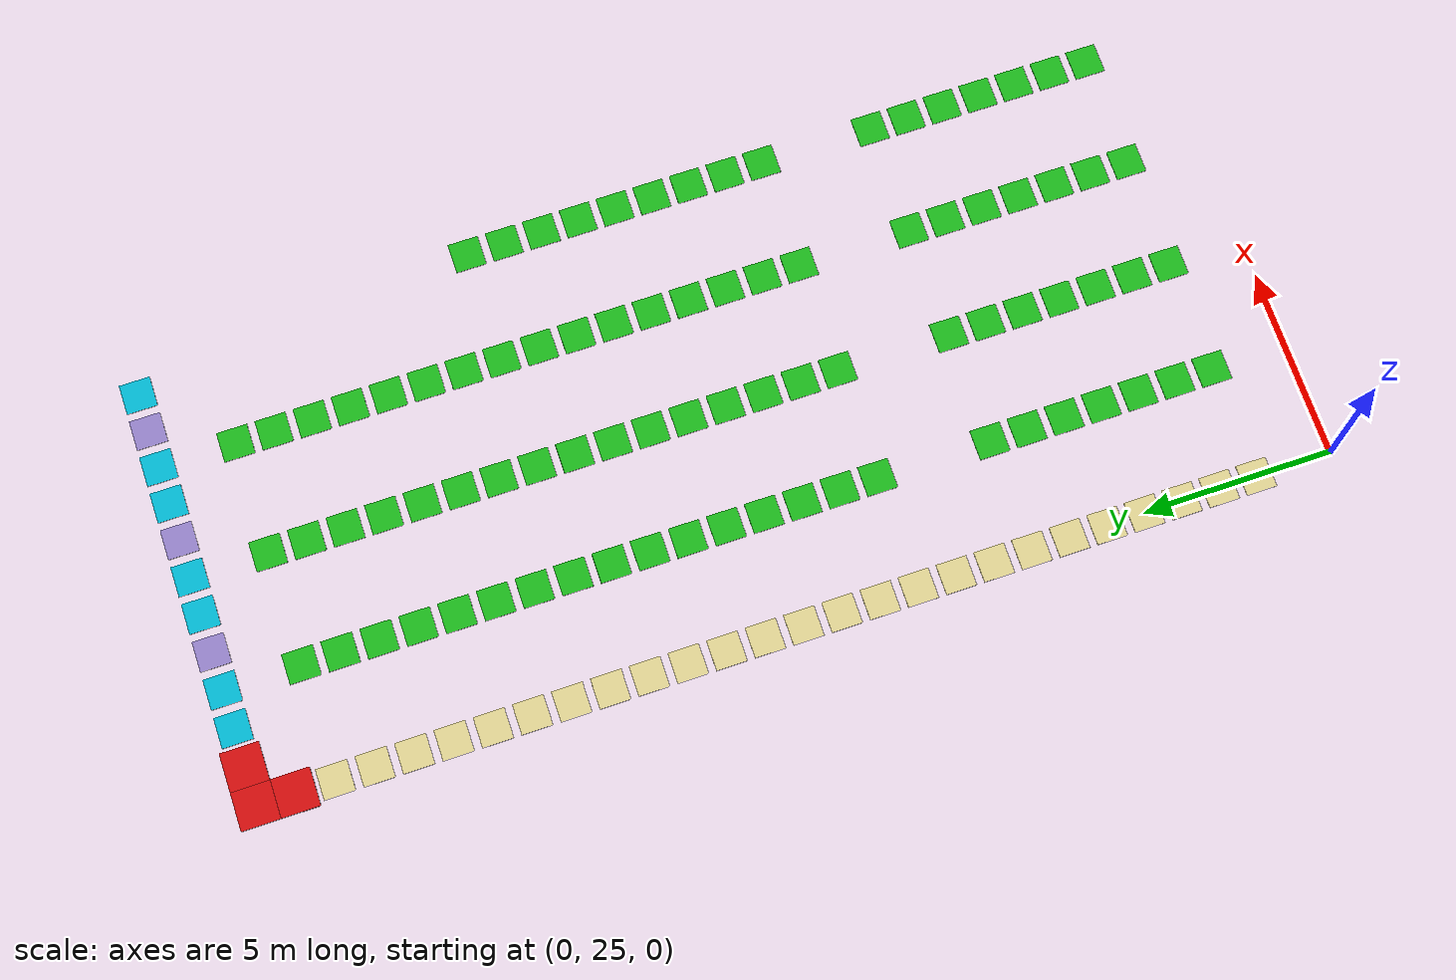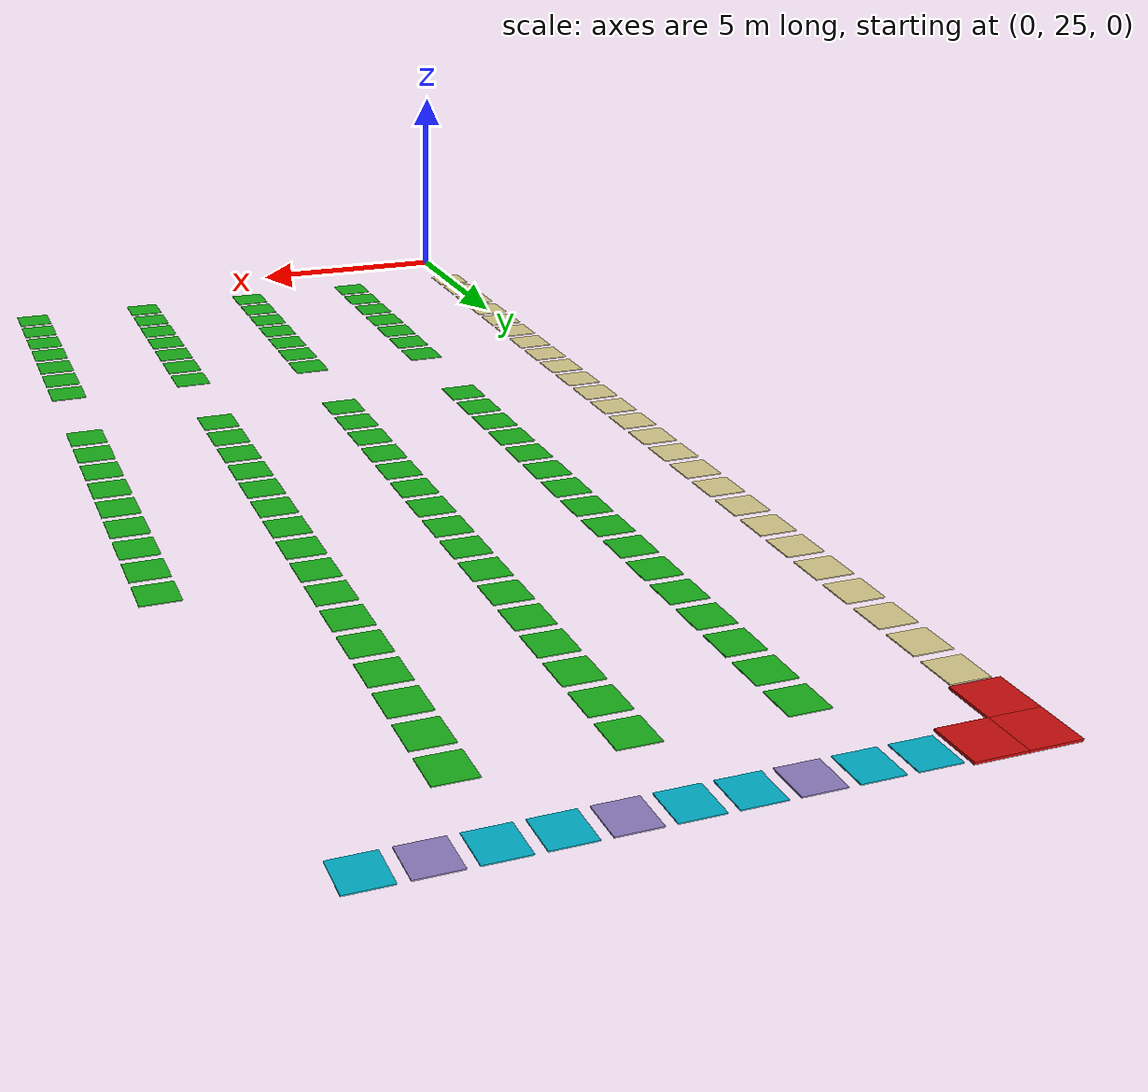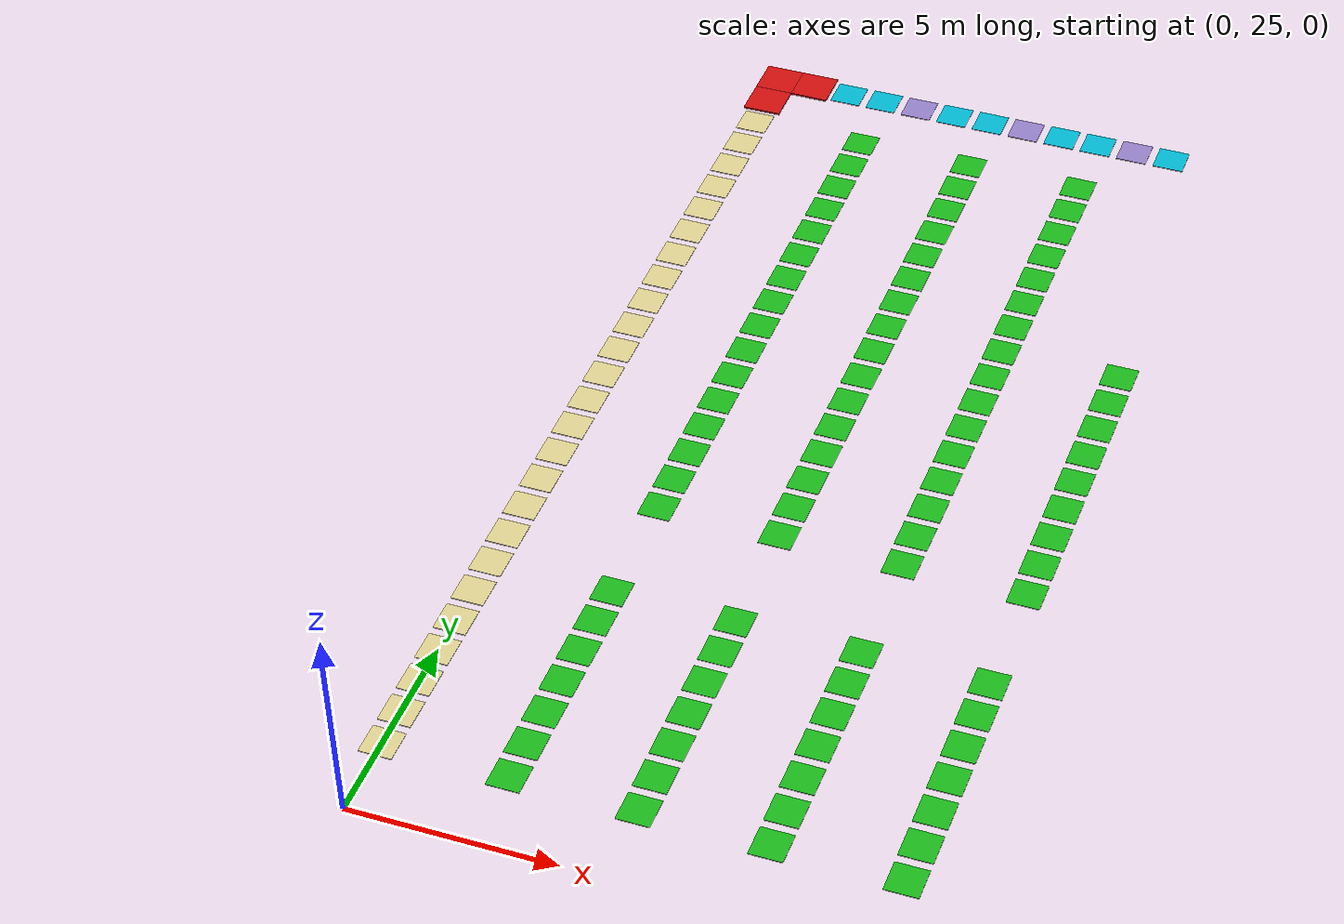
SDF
<sdf version="1.10">
 <world name="warehouse">
  <model name="blocked_0002">
   <static>true</static>
   <pose>0.0
        52.0
        0.045
        0 0 0</pose>
   <link name="link">
    <visual name="visual">
     <geometry><box><size>1.0
                1.0
                0.05</size></box></geometry>
     <material><ambient>0.8 0.05 0.05 1</ambient><diffuse>0.8 0.05 0.05 1</diffuse></material>
    </visual>
   </link>
  </model>
  <model name="blocked_0003">
   <static>true</static>
   <pose>0.0
        53.0
        0.045
        0 0 0</pose>
   <link name="link">
    <visual name="visual">
     <geometry><box><size>1.0
                1.0
                0.05</size></box></geometry>
     <material><ambient>0.8 0.05 0.05 1</ambient><diffuse>0.8 0.05 0.05 1</diffuse></material>
    </visual>
   </link>
  </model>
  <model name="blocked_0005">
   <static>true</static>
   <pose>1.0
        53.0
        0.045
        0 0 0</pose>
   <link name="link">
    <visual name="visual">
     <geometry><box><size>1.0
                1.0
                0.05</size></box></geometry>
     <material><ambient>0.8 0.05 0.05 1</ambient><diffuse>0.8 0.05 0.05 1</diffuse></material>
    </visual>
   </link>
  </model>
  <model name="charging_001">
   <static>true</static>
   <pose>2.0
        53.0
        0.02
        0 0 0</pose>
   <link name="link">
    <visual name="visual">
     <geometry><box><size>0.8
                0.8
                0.02</size></box></geometry>
     <material><ambient>0.00 0.70 0.80 1</ambient><diffuse>0.00 0.70 0.80 1</diffuse></material>
    </visual>
   </link>
  </model>
  <model name="charging_002">
   <static>true</static>
   <pose>3.0
        53.0
        0.02
        0 0 0</pose>
   <link name="link">
    <visual name="visual">
     <geometry><box><size>0.8
                0.8
                0.02</size></box></geometry>
     <material><ambient>0.00 0.70 0.80 1</ambient><diffuse>0.00 0.70 0.80 1</diffuse></material>
    </visual>
   </link>
  </model>
  <model name="charge_queue_001">
   <static>true</static>
   <pose>4.0
        53.0
        0.02
        0 0 0</pose>
   <link name="link">
    <visual name="visual">
     <geometry><box><size>0.8
                0.8
                0.02</size></box></geometry>
     <material><ambient>0.56 0.49 0.76 1</ambient><diffuse>0.56 0.49 0.76 1</diffuse></material>
    </visual>
   </link>
  </model>
  <model name="charging_003">
   <static>true</static>
   <pose>5.0
        53.0
        0.02
        0 0 0</pose>
   <link name="link">
    <visual name="visual">
     <geometry><box><size>0.8
                0.8
                0.02</size></box></geometry>
     <material><ambient>0.00 0.70 0.80 1</ambient><diffuse>0.00 0.70 0.80 1</diffuse></material>
    </visual>
   </link>
  </model>
  <model name="charging_004">
   <static>true</static>
   <pose>6.0
        53.0
        0.02
        0 0 0</pose>
   <link name="link">
    <visual name="visual">
     <geometry><box><size>0.8
                0.8
                0.02</size></box></geometry>
     <material><ambient>0.00 0.70 0.80 1</ambient><diffuse>0.00 0.70 0.80 1</diffuse></material>
    </visual>
   </link>
  </model>
  <model name="charge_queue_002">
   <static>true</static>
   <pose>7.0
        53.0
        0.02
        0 0 0</pose>
   <link name="link">
    <visual name="visual">
     <geometry><box><size>0.8
                0.8
                0.02</size></box></geometry>
     <material><ambient>0.56 0.49 0.76 1</ambient><diffuse>0.56 0.49 0.76 1</diffuse></material>
    </visual>
   </link>
  </model>
  <model name="charging_005">
   <static>true</static>
   <pose>8.0
        53.0
        0.02
        0 0 0</pose>
   <link name="link">
    <visual name="visual">
     <geometry><box><size>0.8
                0.8
                0.02</size></box></geometry>
     <material><ambient>0.00 0.70 0.80 1</ambient><diffuse>0.00 0.70 0.80 1</diffuse></material>
    </visual>
   </link>
  </model>
  <model name="charging_006">
   <static>true</static>
   <pose>9.0
        53.0
        0.02
        0 0 0</pose>
   <link name="link">
    <visual name="visual">
     <geometry><box><size>0.8
                0.8
                0.02</size></box></geometry>
     <material><ambient>0.00 0.70 0.80 1</ambient><diffuse>0.00 0.70 0.80 1</diffuse></material>
    </visual>
   </link>
  </model>
  <model name="charge_queue_003">
   <static>true</static>
   <pose>10.0
        53.0
        0.02
        0 0 0</pose>
   <link name="link">
    <visual name="visual">
     <geometry><box><size>0.8
                0.8
                0.02</size></box></geometry>
     <material><ambient>0.56 0.49 0.76 1</ambient><diffuse>0.56 0.49 0.76 1</diffuse></material>
    </visual>
   </link>
  </model>
  <model name="charging_007">
   <static>true</static>
   <pose>11.0
        53.0
        0.02
        0 0 0</pose>
   <link name="link">
    <visual name="visual">
     <geometry><box><size>0.8
                0.8
                0.02</size></box></geometry>
     <material><ambient>0.00 0.70 0.80 1</ambient><diffuse>0.00 0.70 0.80 1</diffuse></material>
    </visual>
   </link>
  </model>
  <model name="staging_001">
   <static>true</static>
   <pose>0.0
        51.0
        0.02
        0 0 0</pose>
   <link name="link">
    <visual name="visual">
     <geometry><box><size>0.8
                0.8
                0.02</size></box></geometry>
     <material><ambient>0.85 0.80 0.55 1</ambient><diffuse>0.85 0.80 0.55 1</diffuse></material>
    </visual>
   </link>
  </model>
  <model name="shelf_001">
   <static>true</static>
   <pose>3.0
        51.0
        0.02
        0 0 0</pose>
   <link name="link">
    <visual name="visual">
     <geometry><box><size>0.8
                0.8
                0.02</size></box></geometry>
     <material><ambient>0.10 0.70 0.10 1</ambient><diffuse>0.10 0.70 0.10 1</diffuse></material>
    </visual>
   </link>
  </model>
  <model name="shelf_002">
   <static>true</static>
   <pose>6.0
        51.0
        0.02
        0 0 0</pose>
   <link name="link">
    <visual name="visual">
     <geometry><box><size>0.8
                0.8
                0.02</size></box></geometry>
     <material><ambient>0.10 0.70 0.10 1</ambient><diffuse>0.10 0.70 0.10 1</diffuse></material>
    </visual>
   </link>
  </model>
  <model name="shelf_003">
   <static>true</static>
   <pose>9.0
        51.0
        0.02
        0 0 0</pose>
   <link name="link">
    <visual name="visual">
     <geometry><box><size>0.8
                0.8
                0.02</size></box></geometry>
     <material><ambient>0.10 0.70 0.10 1</ambient><diffuse>0.10 0.70 0.10 1</diffuse></material>
    </visual>
   </link>
  </model>
  <model name="staging_003">
   <static>true</static>
   <pose>0.0
        50.0
        0.02
        0 0 0</pose>
   <link name="link">
    <visual name="visual">
     <geometry><box><size>0.8
                0.8
                0.02</size></box></geometry>
     <material><ambient>0.85 0.80 0.55 1</ambient><diffuse>0.85 0.80 0.55 1</diffuse></material>
    </visual>
   </link>
  </model>
  <model name="shelf_013">
   <static>true</static>
   <pose>3.0
        50.0
        0.02
        0 0 0</pose>
   <link name="link">
    <visual name="visual">
     <geometry><box><size>0.8
                0.8
                0.02</size></box></geometry>
     <material><ambient>0.10 0.70 0.10 1</ambient><diffuse>0.10 0.70 0.10 1</diffuse></material>
    </visual>
   </link>
  </model>
  <model name="shelf_014">
   <static>true</static>
   <pose>6.0
        50.0
        0.02
        0 0 0</pose>
   <link name="link">
    <visual name="visual">
     <geometry><box><size>0.8
                0.8
                0.02</size></box></geometry>
     <material><ambient>0.10 0.70 0.10 1</ambient><diffuse>0.10 0.70 0.10 1</diffuse></material>
    </visual>
   </link>
  </model>
  <model name="shelf_015">
   <static>true</static>
   <pose>9.0
        50.0
        0.02
        0 0 0</pose>
   <link name="link">
    <visual name="visual">
     <geometry><box><size>0.8
                0.8
                0.02</size></box></geometry>
     <material><ambient>0.10 0.70 0.10 1</ambient><diffuse>0.10 0.70 0.10 1</diffuse></material>
    </visual>
   </link>
  </model>
  <model name="staging_005">
   <static>true</static>
   <pose>0.0
        49.0
        0.02
        0 0 0</pose>
   <link name="link">
    <visual name="visual">
     <geometry><box><size>0.8
                0.8
                0.02</size></box></geometry>
     <material><ambient>0.85 0.80 0.55 1</ambient><diffuse>0.85 0.80 0.55 1</diffuse></material>
    </visual>
   </link>
  </model>
  <model name="shelf_025">
   <static>true</static>
   <pose>3.0
        49.0
        0.02
        0 0 0</pose>
   <link name="link">
    <visual name="visual">
     <geometry><box><size>0.8
                0.8
                0.02</size></box></geometry>
     <material><ambient>0.10 0.70 0.10 1</ambient><diffuse>0.10 0.70 0.10 1</diffuse></material>
    </visual>
   </link>
  </model>
  <model name="shelf_026">
   <static>true</static>
   <pose>6.0
        49.0
        0.02
        0 0 0</pose>
   <link name="link">
    <visual name="visual">
     <geometry><box><size>0.8
                0.8
                0.02</size></box></geometry>
     <material><ambient>0.10 0.70 0.10 1</ambient><diffuse>0.10 0.70 0.10 1</diffuse></material>
    </visual>
   </link>
  </model>
  <model name="shelf_027">
   <static>true</static>
   <pose>9.0
        49.0
        0.02
        0 0 0</pose>
   <link name="link">
    <visual name="visual">
     <geometry><box><size>0.8
                0.8
                0.02</size></box></geometry>
     <material><ambient>0.10 0.70 0.10 1</ambient><diffuse>0.10 0.70 0.10 1</diffuse></material>
    </visual>
   </link>
  </model>
  <model name="staging_007">
   <static>true</static>
   <pose>0.0
        48.0
        0.02
        0 0 0</pose>
   <link name="link">
    <visual name="visual">
     <geometry><box><size>0.8
                0.8
                0.02</size></box></geometry>
     <material><ambient>0.85 0.80 0.55 1</ambient><diffuse>0.85 0.80 0.55 1</diffuse></material>
    </visual>
   </link>
  </model>
  <model name="shelf_037">
   <static>true</static>
   <pose>3.0
        48.0
        0.02
        0 0 0</pose>
   <link name="link">
    <visual name="visual">
     <geometry><box><size>0.8
                0.8
                0.02</size></box></geometry>
     <material><ambient>0.10 0.70 0.10 1</ambient><diffuse>0.10 0.70 0.10 1</diffuse></material>
    </visual>
   </link>
  </model>
  <model name="shelf_038">
   <static>true</static>
   <pose>6.0
        48.0
        0.02
        0 0 0</pose>
   <link name="link">
    <visual name="visual">
     <geometry><box><size>0.8
                0.8
                0.02</size></box></geometry>
     <material><ambient>0.10 0.70 0.10 1</ambient><diffuse>0.10 0.70 0.10 1</diffuse></material>
    </visual>
   </link>
  </model>
  <model name="shelf_039">
   <static>true</static>
   <pose>9.0
        48.0
        0.02
        0 0 0</pose>
   <link name="link">
    <visual name="visual">
     <geometry><box><size>0.8
                0.8
                0.02</size></box></geometry>
     <material><ambient>0.10 0.70 0.10 1</ambient><diffuse>0.10 0.70 0.10 1</diffuse></material>
    </visual>
   </link>
  </model>
  <model name="staging_009">
   <static>true</static>
   <pose>0.0
        47.0
        0.02
        0 0 0</pose>
   <link name="link">
    <visual name="visual">
     <geometry><box><size>0.8
                0.8
                0.02</size></box></geometry>
     <material><ambient>0.85 0.80 0.55 1</ambient><diffuse>0.85 0.80 0.55 1</diffuse></material>
    </visual>
   </link>
  </model>
  <model name="shelf_049">
   <static>true</static>
   <pose>3.0
        47.0
        0.02
        0 0 0</pose>
   <link name="link">
    <visual name="visual">
     <geometry><box><size>0.8
                0.8
                0.02</size></box></geometry>
     <material><ambient>0.10 0.70 0.10 1</ambient><diffuse>0.10 0.70 0.10 1</diffuse></material>
    </visual>
   </link>
  </model>
  <model name="shelf_050">
   <static>true</static>
   <pose>6.0
        47.0
        0.02
        0 0 0</pose>
   <link name="link">
    <visual name="visual">
     <geometry><box><size>0.8
                0.8
                0.02</size></box></geometry>
     <material><ambient>0.10 0.70 0.10 1</ambient><diffuse>0.10 0.70 0.10 1</diffuse></material>
    </visual>
   </link>
  </model>
  <model name="shelf_051">
   <static>true</static>
   <pose>9.0
        47.0
        0.02
        0 0 0</pose>
   <link name="link">
    <visual name="visual">
     <geometry><box><size>0.8
                0.8
                0.02</size></box></geometry>
     <material><ambient>0.10 0.70 0.10 1</ambient><diffuse>0.10 0.70 0.10 1</diffuse></material>
    </visual>
   </link>
  </model>
  <model name="staging_011">
   <static>true</static>
   <pose>0.0
        46.0
        0.02
        0 0 0</pose>
   <link name="link">
    <visual name="visual">
     <geometry><box><size>0.8
                0.8
                0.02</size></box></geometry>
     <material><ambient>0.85 0.80 0.55 1</ambient><diffuse>0.85 0.80 0.55 1</diffuse></material>
    </visual>
   </link>
  </model>
  <model name="shelf_061">
   <static>true</static>
   <pose>3.0
        46.0
        0.02
        0 0 0</pose>
   <link name="link">
    <visual name="visual">
     <geometry><box><size>0.8
                0.8
                0.02</size></box></geometry>
     <material><ambient>0.10 0.70 0.10 1</ambient><diffuse>0.10 0.70 0.10 1</diffuse></material>
    </visual>
   </link>
  </model>
  <model name="shelf_062">
   <static>true</static>
   <pose>6.0
        46.0
        0.02
        0 0 0</pose>
   <link name="link">
    <visual name="visual">
     <geometry><box><size>0.8
                0.8
                0.02</size></box></geometry>
     <material><ambient>0.10 0.70 0.10 1</ambient><diffuse>0.10 0.70 0.10 1</diffuse></material>
    </visual>
   </link>
  </model>
  <model name="shelf_063">
   <static>true</static>
   <pose>9.0
        46.0
        0.02
        0 0 0</pose>
   <link name="link">
    <visual name="visual">
     <geometry><box><size>0.8
                0.8
                0.02</size></box></geometry>
     <material><ambient>0.10 0.70 0.10 1</ambient><diffuse>0.10 0.70 0.10 1</diffuse></material>
    </visual>
   </link>
  </model>
  <model name="staging_013">
   <static>true</static>
   <pose>0.0
        45.0
        0.02
        0 0 0</pose>
   <link name="link">
    <visual name="visual">
     <geometry><box><size>0.8
                0.8
                0.02</size></box></geometry>
     <material><ambient>0.85 0.80 0.55 1</ambient><diffuse>0.85 0.80 0.55 1</diffuse></material>
    </visual>
   </link>
  </model>
  <model name="shelf_073">
   <static>true</static>
   <pose>3.0
        45.0
        0.02
        0 0 0</pose>
   <link name="link">
    <visual name="visual">
     <geometry><box><size>0.8
                0.8
                0.02</size></box></geometry>
     <material><ambient>0.10 0.70 0.10 1</ambient><diffuse>0.10 0.70 0.10 1</diffuse></material>
    </visual>
   </link>
  </model>
  <model name="shelf_074">
   <static>true</static>
   <pose>6.0
        45.0
        0.02
        0 0 0</pose>
   <link name="link">
    <visual name="visual">
     <geometry><box><size>0.8
                0.8
                0.02</size></box></geometry>
     <material><ambient>0.10 0.70 0.10 1</ambient><diffuse>0.10 0.70 0.10 1</diffuse></material>
    </visual>
   </link>
  </model>
  <model name="shelf_075">
   <static>true</static>
   <pose>9.0
        45.0
        0.02
        0 0 0</pose>
   <link name="link">
    <visual name="visual">
     <geometry><box><size>0.8
                0.8
                0.02</size></box></geometry>
     <material><ambient>0.10 0.70 0.10 1</ambient><diffuse>0.10 0.70 0.10 1</diffuse></material>
    </visual>
   </link>
  </model>
  <model name="staging_015">
   <static>true</static>
   <pose>0.0
        44.0
        0.02
        0 0 0</pose>
   <link name="link">
    <visual name="visual">
     <geometry><box><size>0.8
                0.8
                0.02</size></box></geometry>
     <material><ambient>0.85 0.80 0.55 1</ambient><diffuse>0.85 0.80 0.55 1</diffuse></material>
    </visual>
   </link>
  </model>
  <model name="shelf_085">
   <static>true</static>
   <pose>3.0
        44.0
        0.02
        0 0 0</pose>
   <link name="link">
    <visual name="visual">
     <geometry><box><size>0.8
                0.8
                0.02</size></box></geometry>
     <material><ambient>0.10 0.70 0.10 1</ambient><diffuse>0.10 0.70 0.10 1</diffuse></material>
    </visual>
   </link>
  </model>
  <model name="shelf_086">
   <static>true</static>
   <pose>6.0
        44.0
        0.02
        0 0 0</pose>
   <link name="link">
    <visual name="visual">
     <geometry><box><size>0.8
                0.8
                0.02</size></box></geometry>
     <material><ambient>0.10 0.70 0.10 1</ambient><diffuse>0.10 0.70 0.10 1</diffuse></material>
    </visual>
   </link>
  </model>
  <model name="shelf_087">
   <static>true</static>
   <pose>9.0
        44.0
        0.02
        0 0 0</pose>
   <link name="link">
    <visual name="visual">
     <geometry><box><size>0.8
                0.8
                0.02</size></box></geometry>
     <material><ambient>0.10 0.70 0.10 1</ambient><diffuse>0.10 0.70 0.10 1</diffuse></material>
    </visual>
   </link>
  </model>
  <model name="shelf_088">
   <static>true</static>
   <pose>12.0
        44.0
        0.02
        0 0 0</pose>
   <link name="link">
    <visual name="visual">
     <geometry><box><size>0.8
                0.8
                0.02</size></box></geometry>
     <material><ambient>0.10 0.70 0.10 1</ambient><diffuse>0.10 0.70 0.10 1</diffuse></material>
    </visual>
   </link>
  </model>
  <model name="staging_017">
   <static>true</static>
   <pose>0.0
        43.0
        0.02
        0 0 0</pose>
   <link name="link">
    <visual name="visual">
     <geometry><box><size>0.8
                0.8
                0.02</size></box></geometry>
     <material><ambient>0.85 0.80 0.55 1</ambient><diffuse>0.85 0.80 0.55 1</diffuse></material>
    </visual>
   </link>
  </model>
  <model name="shelf_097">
   <static>true</static>
   <pose>3.0
        43.0
        0.02
        0 0 0</pose>
   <link name="link">
    <visual name="visual">
     <geometry><box><size>0.8
                0.8
                0.02</size></box></geometry>
     <material><ambient>0.10 0.70 0.10 1</ambient><diffuse>0.10 0.70 0.10 1</diffuse></material>
    </visual>
   </link>
  </model>
  <model name="shelf_098">
   <static>true</static>
   <pose>6.0
        43.0
        0.02
        0 0 0</pose>
   <link name="link">
    <visual name="visual">
     <geometry><box><size>0.8
                0.8
                0.02</size></box></geometry>
     <material><ambient>0.10 0.70 0.10 1</ambient><diffuse>0.10 0.70 0.10 1</diffuse></material>
    </visual>
   </link>
  </model>
  <model name="shelf_099">
   <static>true</static>
   <pose>9.0
        43.0
        0.02
        0 0 0</pose>
   <link name="link">
    <visual name="visual">
     <geometry><box><size>0.8
                0.8
                0.02</size></box></geometry>
     <material><ambient>0.10 0.70 0.10 1</ambient><diffuse>0.10 0.70 0.10 1</diffuse></material>
    </visual>
   </link>
  </model>
  <model name="shelf_100">
   <static>true</static>
   <pose>12.0
        43.0
        0.02
        0 0 0</pose>
   <link name="link">
    <visual name="visual">
     <geometry><box><size>0.8
                0.8
                0.02</size></box></geometry>
     <material><ambient>0.10 0.70 0.10 1</ambient><diffuse>0.10 0.70 0.10 1</diffuse></material>
    </visual>
   </link>
  </model>
  <model name="staging_019">
   <static>true</static>
   <pose>0.0
        42.0
        0.02
        0 0 0</pose>
   <link name="link">
    <visual name="visual">
     <geometry><box><size>0.8
                0.8
                0.02</size></box></geometry>
     <material><ambient>0.85 0.80 0.55 1</ambient><diffuse>0.85 0.80 0.55 1</diffuse></material>
    </visual>
   </link>
  </model>
  <model name="shelf_109">
   <static>true</static>
   <pose>3.0
        42.0
        0.02
        0 0 0</pose>
   <link name="link">
    <visual name="visual">
     <geometry><box><size>0.8
                0.8
                0.02</size></box></geometry>
     <material><ambient>0.10 0.70 0.10 1</ambient><diffuse>0.10 0.70 0.10 1</diffuse></material>
    </visual>
   </link>
  </model>
  <model name="shelf_110">
   <static>true</static>
   <pose>6.0
        42.0
        0.02
        0 0 0</pose>
   <link name="link">
    <visual name="visual">
     <geometry><box><size>0.8
                0.8
                0.02</size></box></geometry>
     <material><ambient>0.10 0.70 0.10 1</ambient><diffuse>0.10 0.70 0.10 1</diffuse></material>
    </visual>
   </link>
  </model>
  <model name="shelf_111">
   <static>true</static>
   <pose>9.0
        42.0
        0.02
        0 0 0</pose>
   <link name="link">
    <visual name="visual">
     <geometry><box><size>0.8
                0.8
                0.02</size></box></geometry>
     <material><ambient>0.10 0.70 0.10 1</ambient><diffuse>0.10 0.70 0.10 1</diffuse></material>
    </visual>
   </link>
  </model>
  <model name="shelf_112">
   <static>true</static>
   <pose>12.0
        42.0
        0.02
        0 0 0</pose>
   <link name="link">
    <visual name="visual">
     <geometry><box><size>0.8
                0.8
                0.02</size></box></geometry>
     <material><ambient>0.10 0.70 0.10 1</ambient><diffuse>0.10 0.70 0.10 1</diffuse></material>
    </visual>
   </link>
  </model>
  <model name="staging_021">
   <static>true</static>
   <pose>0.0
        41.0
        0.02
        0 0 0</pose>
   <link name="link">
    <visual name="visual">
     <geometry><box><size>0.8
                0.8
                0.02</size></box></geometry>
     <material><ambient>0.85 0.80 0.55 1</ambient><diffuse>0.85 0.80 0.55 1</diffuse></material>
    </visual>
   </link>
  </model>
  <model name="shelf_121">
   <static>true</static>
   <pose>3.0
        41.0
        0.02
        0 0 0</pose>
   <link name="link">
    <visual name="visual">
     <geometry><box><size>0.8
                0.8
                0.02</size></box></geometry>
     <material><ambient>0.10 0.70 0.10 1</ambient><diffuse>0.10 0.70 0.10 1</diffuse></material>
    </visual>
   </link>
  </model>
  <model name="shelf_122">
   <static>true</static>
   <pose>6.0
        41.0
        0.02
        0 0 0</pose>
   <link name="link">
    <visual name="visual">
     <geometry><box><size>0.8
                0.8
                0.02</size></box></geometry>
     <material><ambient>0.10 0.70 0.10 1</ambient><diffuse>0.10 0.70 0.10 1</diffuse></material>
    </visual>
   </link>
  </model>
  <model name="shelf_123">
   <static>true</static>
   <pose>9.0
        41.0
        0.02
        0 0 0</pose>
   <link name="link">
    <visual name="visual">
     <geometry><box><size>0.8
                0.8
                0.02</size></box></geometry>
     <material><ambient>0.10 0.70 0.10 1</ambient><diffuse>0.10 0.70 0.10 1</diffuse></material>
    </visual>
   </link>
  </model>
  <model name="shelf_124">
   <static>true</static>
   <pose>12.0
        41.0
        0.02
        0 0 0</pose>
   <link name="link">
    <visual name="visual">
     <geometry><box><size>0.8
                0.8
                0.02</size></box></geometry>
     <material><ambient>0.10 0.70 0.10 1</ambient><diffuse>0.10 0.70 0.10 1</diffuse></material>
    </visual>
   </link>
  </model>
  <model name="staging_023">
   <static>true</static>
   <pose>0.0
        40.0
        0.02
        0 0 0</pose>
   <link name="link">
    <visual name="visual">
     <geometry><box><size>0.8
                0.8
                0.02</size></box></geometry>
     <material><ambient>0.85 0.80 0.55 1</ambient><diffuse>0.85 0.80 0.55 1</diffuse></material>
    </visual>
   </link>
  </model>
  <model name="shelf_133">
   <static>true</static>
   <pose>3.0
        40.0
        0.02
        0 0 0</pose>
   <link name="link">
    <visual name="visual">
     <geometry><box><size>0.8
                0.8
                0.02</size></box></geometry>
     <material><ambient>0.10 0.70 0.10 1</ambient><diffuse>0.10 0.70 0.10 1</diffuse></material>
    </visual>
   </link>
  </model>
  <model name="shelf_134">
   <static>true</static>
   <pose>6.0
        40.0
        0.02
        0 0 0</pose>
   <link name="link">
    <visual name="visual">
     <geometry><box><size>0.8
                0.8
                0.02</size></box></geometry>
     <material><ambient>0.10 0.70 0.10 1</ambient><diffuse>0.10 0.70 0.10 1</diffuse></material>
    </visual>
   </link>
  </model>
  <model name="shelf_135">
   <static>true</static>
   <pose>9.0
        40.0
        0.02
        0 0 0</pose>
   <link name="link">
    <visual name="visual">
     <geometry><box><size>0.8
                0.8
                0.02</size></box></geometry>
     <material><ambient>0.10 0.70 0.10 1</ambient><diffuse>0.10 0.70 0.10 1</diffuse></material>
    </visual>
   </link>
  </model>
  <model name="shelf_136">
   <static>true</static>
   <pose>12.0
        40.0
        0.02
        0 0 0</pose>
   <link name="link">
    <visual name="visual">
     <geometry><box><size>0.8
                0.8
                0.02</size></box></geometry>
     <material><ambient>0.10 0.70 0.10 1</ambient><diffuse>0.10 0.70 0.10 1</diffuse></material>
    </visual>
   </link>
  </model>
  <model name="staging_025">
   <static>true</static>
   <pose>0.0
        39.0
        0.02
        0 0 0</pose>
   <link name="link">
    <visual name="visual">
     <geometry><box><size>0.8
                0.8
                0.02</size></box></geometry>
     <material><ambient>0.85 0.80 0.55 1</ambient><diffuse>0.85 0.80 0.55 1</diffuse></material>
    </visual>
   </link>
  </model>
  <model name="shelf_145">
   <static>true</static>
   <pose>3.0
        39.0
        0.02
        0 0 0</pose>
   <link name="link">
    <visual name="visual">
     <geometry><box><size>0.8
                0.8
                0.02</size></box></geometry>
     <material><ambient>0.10 0.70 0.10 1</ambient><diffuse>0.10 0.70 0.10 1</diffuse></material>
    </visual>
   </link>
  </model>
  <model name="shelf_146">
   <static>true</static>
   <pose>6.0
        39.0
        0.02
        0 0 0</pose>
   <link name="link">
    <visual name="visual">
     <geometry><box><size>0.8
                0.8
                0.02</size></box></geometry>
     <material><ambient>0.10 0.70 0.10 1</ambient><diffuse>0.10 0.70 0.10 1</diffuse></material>
    </visual>
   </link>
  </model>
  <model name="shelf_147">
   <static>true</static>
   <pose>9.0
        39.0
        0.02
        0 0 0</pose>
   <link name="link">
    <visual name="visual">
     <geometry><box><size>0.8
                0.8
                0.02</size></box></geometry>
     <material><ambient>0.10 0.70 0.10 1</ambient><diffuse>0.10 0.70 0.10 1</diffuse></material>
    </visual>
   </link>
  </model>
  <model name="shelf_148">
   <static>true</static>
   <pose>12.0
        39.0
        0.02
        0 0 0</pose>
   <link name="link">
    <visual name="visual">
     <geometry><box><size>0.8
                0.8
                0.02</size></box></geometry>
     <material><ambient>0.10 0.70 0.10 1</ambient><diffuse>0.10 0.70 0.10 1</diffuse></material>
    </visual>
   </link>
  </model>
  <model name="staging_027">
   <static>true</static>
   <pose>0.0
        38.0
        0.02
        0 0 0</pose>
   <link name="link">
    <visual name="visual">
     <geometry><box><size>0.8
                0.8
                0.02</size></box></geometry>
     <material><ambient>0.85 0.80 0.55 1</ambient><diffuse>0.85 0.80 0.55 1</diffuse></material>
    </visual>
   </link>
  </model>
  <model name="shelf_157">
   <static>true</static>
   <pose>3.0
        38.0
        0.02
        0 0 0</pose>
   <link name="link">
    <visual name="visual">
     <geometry><box><size>0.8
                0.8
                0.02</size></box></geometry>
     <material><ambient>0.10 0.70 0.10 1</ambient><diffuse>0.10 0.70 0.10 1</diffuse></material>
    </visual>
   </link>
  </model>
  <model name="shelf_158">
   <static>true</static>
   <pose>6.0
        38.0
        0.02
        0 0 0</pose>
   <link name="link">
    <visual name="visual">
     <geometry><box><size>0.8
                0.8
                0.02</size></box></geometry>
     <material><ambient>0.10 0.70 0.10 1</ambient><diffuse>0.10 0.70 0.10 1</diffuse></material>
    </visual>
   </link>
  </model>
  <model name="shelf_159">
   <static>true</static>
   <pose>9.0
        38.0
        0.02
        0 0 0</pose>
   <link name="link">
    <visual name="visual">
     <geometry><box><size>0.8
                0.8
                0.02</size></box></geometry>
     <material><ambient>0.10 0.70 0.10 1</ambient><diffuse>0.10 0.70 0.10 1</diffuse></material>
    </visual>
   </link>
  </model>
  <model name="shelf_160">
   <static>true</static>
   <pose>12.0
        38.0
        0.02
        0 0 0</pose>
   <link name="link">
    <visual name="visual">
     <geometry><box><size>0.8
                0.8
                0.02</size></box></geometry>
     <material><ambient>0.10 0.70 0.10 1</ambient><diffuse>0.10 0.70 0.10 1</diffuse></material>
    </visual>
   </link>
  </model>
  <model name="staging_029">
   <static>true</static>
   <pose>0.0
        37.0
        0.02
        0 0 0</pose>
   <link name="link">
    <visual name="visual">
     <geometry><box><size>0.8
                0.8
                0.02</size></box></geometry>
     <material><ambient>0.85 0.80 0.55 1</ambient><diffuse>0.85 0.80 0.55 1</diffuse></material>
    </visual>
   </link>
  </model>
  <model name="shelf_169">
   <static>true</static>
   <pose>3.0
        37.0
        0.02
        0 0 0</pose>
   <link name="link">
    <visual name="visual">
     <geometry><box><size>0.8
                0.8
                0.02</size></box></geometry>
     <material><ambient>0.10 0.70 0.10 1</ambient><diffuse>0.10 0.70 0.10 1</diffuse></material>
    </visual>
   </link>
  </model>
  <model name="shelf_170">
   <static>true</static>
   <pose>6.0
        37.0
        0.02
        0 0 0</pose>
   <link name="link">
    <visual name="visual">
     <geometry><box><size>0.8
                0.8
                0.02</size></box></geometry>
     <material><ambient>0.10 0.70 0.10 1</ambient><diffuse>0.10 0.70 0.10 1</diffuse></material>
    </visual>
   </link>
  </model>
  <model name="shelf_171">
   <static>true</static>
   <pose>9.0
        37.0
        0.02
        0 0 0</pose>
   <link name="link">
    <visual name="visual">
     <geometry><box><size>0.8
                0.8
                0.02</size></box></geometry>
     <material><ambient>0.10 0.70 0.10 1</ambient><diffuse>0.10 0.70 0.10 1</diffuse></material>
    </visual>
   </link>
  </model>
  <model name="shelf_172">
   <static>true</static>
   <pose>12.0
        37.0
        0.02
        0 0 0</pose>
   <link name="link">
    <visual name="visual">
     <geometry><box><size>0.8
                0.8
                0.02</size></box></geometry>
     <material><ambient>0.10 0.70 0.10 1</ambient><diffuse>0.10 0.70 0.10 1</diffuse></material>
    </visual>
   </link>
  </model>
  <model name="staging_031">
   <static>true</static>
   <pose>0.0
        36.0
        0.02
        0 0 0</pose>
   <link name="link">
    <visual name="visual">
     <geometry><box><size>0.8
                0.8
                0.02</size></box></geometry>
     <material><ambient>0.85 0.80 0.55 1</ambient><diffuse>0.85 0.80 0.55 1</diffuse></material>
    </visual>
   </link>
  </model>
  <model name="shelf_181">
   <static>true</static>
   <pose>3.0
        36.0
        0.02
        0 0 0</pose>
   <link name="link">
    <visual name="visual">
     <geometry><box><size>0.8
                0.8
                0.02</size></box></geometry>
     <material><ambient>0.10 0.70 0.10 1</ambient><diffuse>0.10 0.70 0.10 1</diffuse></material>
    </visual>
   </link>
  </model>
  <model name="shelf_182">
   <static>true</static>
   <pose>6.0
        36.0
        0.02
        0 0 0</pose>
   <link name="link">
    <visual name="visual">
     <geometry><box><size>0.8
                0.8
                0.02</size></box></geometry>
     <material><ambient>0.10 0.70 0.10 1</ambient><diffuse>0.10 0.70 0.10 1</diffuse></material>
    </visual>
   </link>
  </model>
  <model name="shelf_183">
   <static>true</static>
   <pose>9.0
        36.0
        0.02
        0 0 0</pose>
   <link name="link">
    <visual name="visual">
     <geometry><box><size>0.8
                0.8
                0.02</size></box></geometry>
     <material><ambient>0.10 0.70 0.10 1</ambient><diffuse>0.10 0.70 0.10 1</diffuse></material>
    </visual>
   </link>
  </model>
  <model name="shelf_184">
   <static>true</static>
   <pose>12.0
        36.0
        0.02
        0 0 0</pose>
   <link name="link">
    <visual name="visual">
     <geometry><box><size>0.8
                0.8
                0.02</size></box></geometry>
     <material><ambient>0.10 0.70 0.10 1</ambient><diffuse>0.10 0.70 0.10 1</diffuse></material>
    </visual>
   </link>
  </model>
  <model name="staging_033">
   <static>true</static>
   <pose>0.0
        35.0
        0.02
        0 0 0</pose>
   <link name="link">
    <visual name="visual">
     <geometry><box><size>0.8
                0.8
                0.02</size></box></geometry>
     <material><ambient>0.85 0.80 0.55 1</ambient><diffuse>0.85 0.80 0.55 1</diffuse></material>
    </visual>
   </link>
  </model>
  <model name="staging_035">
   <static>true</static>
   <pose>0.0
        34.0
        0.02
        0 0 0</pose>
   <link name="link">
    <visual name="visual">
     <geometry><box><size>0.8
                0.8
                0.02</size></box></geometry>
     <material><ambient>0.85 0.80 0.55 1</ambient><diffuse>0.85 0.80 0.55 1</diffuse></material>
    </visual>
   </link>
  </model>
  <model name="staging_037">
   <static>true</static>
   <pose>0.0
        33.0
        0.02
        0 0 0</pose>
   <link name="link">
    <visual name="visual">
     <geometry><box><size>0.8
                0.8
                0.02</size></box></geometry>
     <material><ambient>0.85 0.80 0.55 1</ambient><diffuse>0.85 0.80 0.55 1</diffuse></material>
    </visual>
   </link>
  </model>
  <model name="shelf_193">
   <static>true</static>
   <pose>3.0
        33.0
        0.02
        0 0 0</pose>
   <link name="link">
    <visual name="visual">
     <geometry><box><size>0.8
                0.8
                0.02</size></box></geometry>
     <material><ambient>0.10 0.70 0.10 1</ambient><diffuse>0.10 0.70 0.10 1</diffuse></material>
    </visual>
   </link>
  </model>
  <model name="shelf_194">
   <static>true</static>
   <pose>6.0
        33.0
        0.02
        0 0 0</pose>
   <link name="link">
    <visual name="visual">
     <geometry><box><size>0.8
                0.8
                0.02</size></box></geometry>
     <material><ambient>0.10 0.70 0.10 1</ambient><diffuse>0.10 0.70 0.10 1</diffuse></material>
    </visual>
   </link>
  </model>
  <model name="shelf_195">
   <static>true</static>
   <pose>9.0
        33.0
        0.02
        0 0 0</pose>
   <link name="link">
    <visual name="visual">
     <geometry><box><size>0.8
                0.8
                0.02</size></box></geometry>
     <material><ambient>0.10 0.70 0.10 1</ambient><diffuse>0.10 0.70 0.10 1</diffuse></material>
    </visual>
   </link>
  </model>
  <model name="shelf_196">
   <static>true</static>
   <pose>12.0
        33.0
        0.02
        0 0 0</pose>
   <link name="link">
    <visual name="visual">
     <geometry><box><size>0.8
                0.8
                0.02</size></box></geometry>
     <material><ambient>0.10 0.70 0.10 1</ambient><diffuse>0.10 0.70 0.10 1</diffuse></material>
    </visual>
   </link>
  </model>
  <model name="staging_039">
   <static>true</static>
   <pose>0.0
        32.0
        0.02
        0 0 0</pose>
   <link name="link">
    <visual name="visual">
     <geometry><box><size>0.8
                0.8
                0.02</size></box></geometry>
     <material><ambient>0.85 0.80 0.55 1</ambient><diffuse>0.85 0.80 0.55 1</diffuse></material>
    </visual>
   </link>
  </model>
  <model name="shelf_205">
   <static>true</static>
   <pose>3.0
        32.0
        0.02
        0 0 0</pose>
   <link name="link">
    <visual name="visual">
     <geometry><box><size>0.8
                0.8
                0.02</size></box></geometry>
     <material><ambient>0.10 0.70 0.10 1</ambient><diffuse>0.10 0.70 0.10 1</diffuse></material>
    </visual>
   </link>
  </model>
  <model name="shelf_206">
   <static>true</static>
   <pose>6.0
        32.0
        0.02
        0 0 0</pose>
   <link name="link">
    <visual name="visual">
     <geometry><box><size>0.8
                0.8
                0.02</size></box></geometry>
     <material><ambient>0.10 0.70 0.10 1</ambient><diffuse>0.10 0.70 0.10 1</diffuse></material>
    </visual>
   </link>
  </model>
  <model name="shelf_207">
   <static>true</static>
   <pose>9.0
        32.0
        0.02
        0 0 0</pose>
   <link name="link">
    <visual name="visual">
     <geometry><box><size>0.8
                0.8
                0.02</size></box></geometry>
     <material><ambient>0.10 0.70 0.10 1</ambient><diffuse>0.10 0.70 0.10 1</diffuse></material>
    </visual>
   </link>
  </model>
  <model name="shelf_208">
   <static>true</static>
   <pose>12.0
        32.0
        0.02
        0 0 0</pose>
   <link name="link">
    <visual name="visual">
     <geometry><box><size>0.8
                0.8
                0.02</size></box></geometry>
     <material><ambient>0.10 0.70 0.10 1</ambient><diffuse>0.10 0.70 0.10 1</diffuse></material>
    </visual>
   </link>
  </model>
  <model name="staging_041">
   <static>true</static>
   <pose>0.0
        31.0
        0.02
        0 0 0</pose>
   <link name="link">
    <visual name="visual">
     <geometry><box><size>0.8
                0.8
                0.02</size></box></geometry>
     <material><ambient>0.85 0.80 0.55 1</ambient><diffuse>0.85 0.80 0.55 1</diffuse></material>
    </visual>
   </link>
  </model>
  <model name="shelf_217">
   <static>true</static>
   <pose>3.0
        31.0
        0.02
        0 0 0</pose>
   <link name="link">
    <visual name="visual">
     <geometry><box><size>0.8
                0.8
                0.02</size></box></geometry>
     <material><ambient>0.10 0.70 0.10 1</ambient><diffuse>0.10 0.70 0.10 1</diffuse></material>
    </visual>
   </link>
  </model>
  <model name="shelf_218">
   <static>true</static>
   <pose>6.0
        31.0
        0.02
        0 0 0</pose>
   <link name="link">
    <visual name="visual">
     <geometry><box><size>0.8
                0.8
                0.02</size></box></geometry>
     <material><ambient>0.10 0.70 0.10 1</ambient><diffuse>0.10 0.70 0.10 1</diffuse></material>
    </visual>
   </link>
  </model>
  <model name="shelf_219">
   <static>true</static>
   <pose>9.0
        31.0
        0.02
        0 0 0</pose>
   <link name="link">
    <visual name="visual">
     <geometry><box><size>0.8
                0.8
                0.02</size></box></geometry>
     <material><ambient>0.10 0.70 0.10 1</ambient><diffuse>0.10 0.70 0.10 1</diffuse></material>
    </visual>
   </link>
  </model>
  <model name="shelf_220">
   <static>true</static>
   <pose>12.0
        31.0
        0.02
        0 0 0</pose>
   <link name="link">
    <visual name="visual">
     <geometry><box><size>0.8
                0.8
                0.02</size></box></geometry>
     <material><ambient>0.10 0.70 0.10 1</ambient><diffuse>0.10 0.70 0.10 1</diffuse></material>
    </visual>
   </link>
  </model>
  <model name="staging_043">
   <static>true</static>
   <pose>0.0
        30.0
        0.02
        0 0 0</pose>
   <link name="link">
    <visual name="visual">
     <geometry><box><size>0.8
                0.8
                0.02</size></box></geometry>
     <material><ambient>0.85 0.80 0.55 1</ambient><diffuse>0.85 0.80 0.55 1</diffuse></material>
    </visual>
   </link>
  </model>
  <model name="shelf_229">
   <static>true</static>
   <pose>3.0
        30.0
        0.02
        0 0 0</pose>
   <link name="link">
    <visual name="visual">
     <geometry><box><size>0.8
                0.8
                0.02</size></box></geometry>
     <material><ambient>0.10 0.70 0.10 1</ambient><diffuse>0.10 0.70 0.10 1</diffuse></material>
    </visual>
   </link>
  </model>
  <model name="shelf_230">
   <static>true</static>
   <pose>6.0
        30.0
        0.02
        0 0 0</pose>
   <link name="link">
    <visual name="visual">
     <geometry><box><size>0.8
                0.8
                0.02</size></box></geometry>
     <material><ambient>0.10 0.70 0.10 1</ambient><diffuse>0.10 0.70 0.10 1</diffuse></material>
    </visual>
   </link>
  </model>
  <model name="shelf_231">
   <static>true</static>
   <pose>9.0
        30.0
        0.02
        0 0 0</pose>
   <link name="link">
    <visual name="visual">
     <geometry><box><size>0.8
                0.8
                0.02</size></box></geometry>
     <material><ambient>0.10 0.70 0.10 1</ambient><diffuse>0.10 0.70 0.10 1</diffuse></material>
    </visual>
   </link>
  </model>
  <model name="shelf_232">
   <static>true</static>
   <pose>12.0
        30.0
        0.02
        0 0 0</pose>
   <link name="link">
    <visual name="visual">
     <geometry><box><size>0.8
                0.8
                0.02</size></box></geometry>
     <material><ambient>0.10 0.70 0.10 1</ambient><diffuse>0.10 0.70 0.10 1</diffuse></material>
    </visual>
   </link>
  </model>
  <model name="staging_045">
   <static>true</static>
   <pose>0.0
        29.0
        0.02
        0 0 0</pose>
   <link name="link">
    <visual name="visual">
     <geometry><box><size>0.8
                0.8
                0.02</size></box></geometry>
     <material><ambient>0.85 0.80 0.55 1</ambient><diffuse>0.85 0.80 0.55 1</diffuse></material>
    </visual>
   </link>
  </model>
  <model name="shelf_241">
   <static>true</static>
   <pose>3.0
        29.0
        0.02
        0 0 0</pose>
   <link name="link">
    <visual name="visual">
     <geometry><box><size>0.8
                0.8
                0.02</size></box></geometry>
     <material><ambient>0.10 0.70 0.10 1</ambient><diffuse>0.10 0.70 0.10 1</diffuse></material>
    </visual>
   </link>
  </model>
  <model name="shelf_242">
   <static>true</static>
   <pose>6.0
        29.0
        0.02
        0 0 0</pose>
   <link name="link">
    <visual name="visual">
     <geometry><box><size>0.8
                0.8
                0.02</size></box></geometry>
     <material><ambient>0.10 0.70 0.10 1</ambient><diffuse>0.10 0.70 0.10 1</diffuse></material>
    </visual>
   </link>
  </model>
  <model name="shelf_243">
   <static>true</static>
   <pose>9.0
        29.0
        0.02
        0 0 0</pose>
   <link name="link">
    <visual name="visual">
     <geometry><box><size>0.8
                0.8
                0.02</size></box></geometry>
     <material><ambient>0.10 0.70 0.10 1</ambient><diffuse>0.10 0.70 0.10 1</diffuse></material>
    </visual>
   </link>
  </model>
  <model name="shelf_244">
   <static>true</static>
   <pose>12.0
        29.0
        0.02
        0 0 0</pose>
   <link name="link">
    <visual name="visual">
     <geometry><box><size>0.8
                0.8
                0.02</size></box></geometry>
     <material><ambient>0.10 0.70 0.10 1</ambient><diffuse>0.10 0.70 0.10 1</diffuse></material>
    </visual>
   </link>
  </model>
  <model name="staging_047">
   <static>true</static>
   <pose>0.0
        28.0
        0.02
        0 0 0</pose>
   <link name="link">
    <visual name="visual">
     <geometry><box><size>0.8
                0.8
                0.02</size></box></geometry>
     <material><ambient>0.85 0.80 0.55 1</ambient><diffuse>0.85 0.80 0.55 1</diffuse></material>
    </visual>
   </link>
  </model>
  <model name="shelf_253">
   <static>true</static>
   <pose>3.0
        28.0
        0.02
        0 0 0</pose>
   <link name="link">
    <visual name="visual">
     <geometry><box><size>0.8
                0.8
                0.02</size></box></geometry>
     <material><ambient>0.10 0.70 0.10 1</ambient><diffuse>0.10 0.70 0.10 1</diffuse></material>
    </visual>
   </link>
  </model>
  <model name="shelf_254">
   <static>true</static>
   <pose>6.0
        28.0
        0.02
        0 0 0</pose>
   <link name="link">
    <visual name="visual">
     <geometry><box><size>0.8
                0.8
                0.02</size></box></geometry>
     <material><ambient>0.10 0.70 0.10 1</ambient><diffuse>0.10 0.70 0.10 1</diffuse></material>
    </visual>
   </link>
  </model>
  <model name="shelf_255">
   <static>true</static>
   <pose>9.0
        28.0
        0.02
        0 0 0</pose>
   <link name="link">
    <visual name="visual">
     <geometry><box><size>0.8
                0.8
                0.02</size></box></geometry>
     <material><ambient>0.10 0.70 0.10 1</ambient><diffuse>0.10 0.70 0.10 1</diffuse></material>
    </visual>
   </link>
  </model>
  <model name="shelf_256">
   <static>true</static>
   <pose>12.0
        28.0
        0.02
        0 0 0</pose>
   <link name="link">
    <visual name="visual">
     <geometry><box><size>0.8
                0.8
                0.02</size></box></geometry>
     <material><ambient>0.10 0.70 0.10 1</ambient><diffuse>0.10 0.70 0.10 1</diffuse></material>
    </visual>
   </link>
  </model>
  <model name="staging_049">
   <static>true</static>
   <pose>0.0
        27.0
        0.02
        0 0 0</pose>
   <link name="link">
    <visual name="visual">
     <geometry><box><size>0.8
                0.8
                0.02</size></box></geometry>
     <material><ambient>0.85 0.80 0.55 1</ambient><diffuse>0.85 0.80 0.55 1</diffuse></material>
    </visual>
   </link>
  </model>
  <model name="shelf_265">
   <static>true</static>
   <pose>3.0
        27.0
        0.02
        0 0 0</pose>
   <link name="link">
    <visual name="visual">
     <geometry><box><size>0.8
                0.8
                0.02</size></box></geometry>
     <material><ambient>0.10 0.70 0.10 1</ambient><diffuse>0.10 0.70 0.10 1</diffuse></material>
    </visual>
   </link>
  </model>
  <model name="shelf_266">
   <static>true</static>
   <pose>6.0
        27.0
        0.02
        0 0 0</pose>
   <link name="link">
    <visual name="visual">
     <geometry><box><size>0.8
                0.8
                0.02</size></box></geometry>
     <material><ambient>0.10 0.70 0.10 1</ambient><diffuse>0.10 0.70 0.10 1</diffuse></material>
    </visual>
   </link>
  </model>
  <model name="shelf_267">
   <static>true</static>
   <pose>9.0
        27.0
        0.02
        0 0 0</pose>
   <link name="link">
    <visual name="visual">
     <geometry><box><size>0.8
                0.8
                0.02</size></box></geometry>
     <material><ambient>0.10 0.70 0.10 1</ambient><diffuse>0.10 0.70 0.10 1</diffuse></material>
    </visual>
   </link>
  </model>
  <model name="shelf_268">
   <static>true</static>
   <pose>12.0
        27.0
        0.02
        0 0 0</pose>
   <link name="link">
    <visual name="visual">
     <geometry><box><size>0.8
                0.8
                0.02</size></box></geometry>
     <material><ambient>0.10 0.70 0.10 1</ambient><diffuse>0.10 0.70 0.10 1</diffuse></material>
    </visual>
   </link>
  </model>
 </world>
</sdf>
